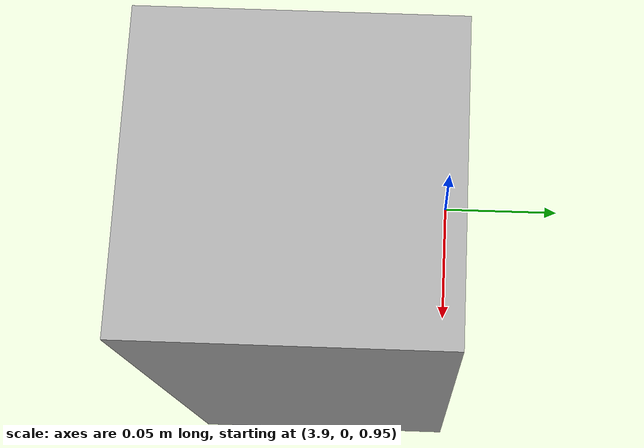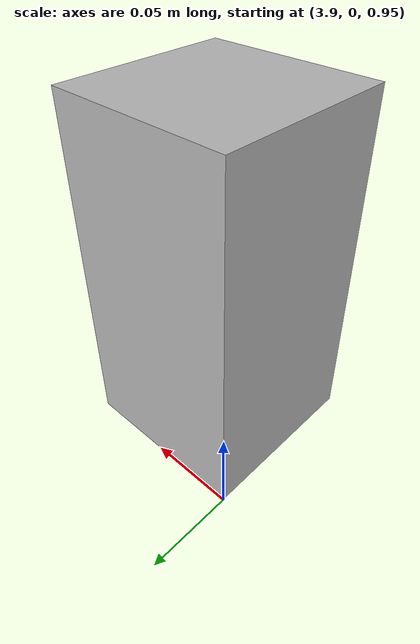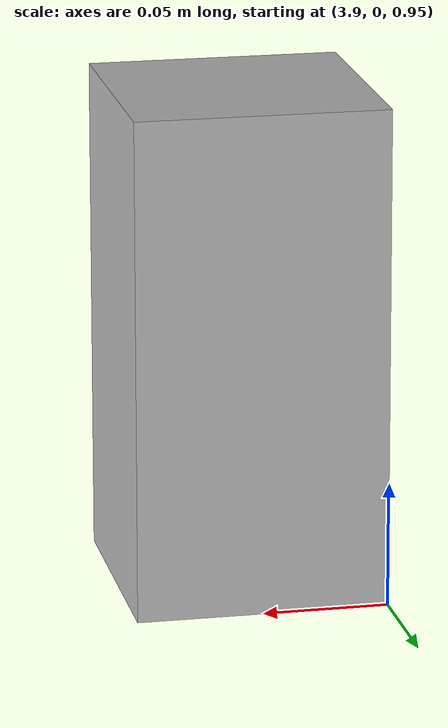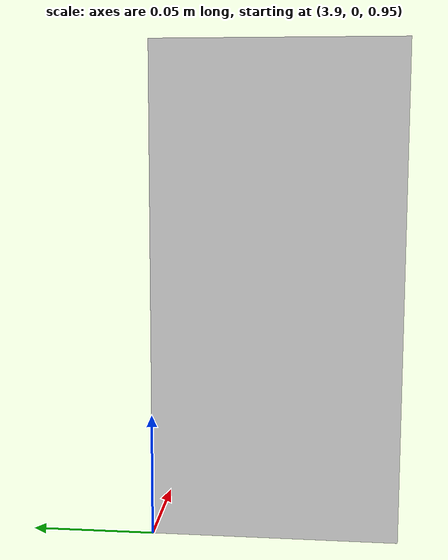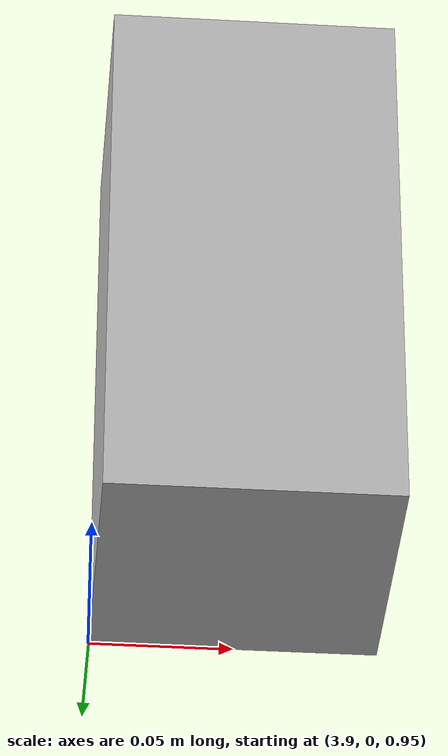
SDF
<?xml version="1.0" ?>
    <sdf version="1.5">
        <model name="camera">
            <pose>4 0 1.0 0 0.0 3.14</pose>
            <link name="link">
                <pose>0.05 0.05 0.05 0 0 0</pose>
                <inertial>
                <mass>1</mass>
                <inertia>
                    <ixx>1</ixx>
                    <iyy>1</iyy>
                    <izz>1</izz>
                </inertia>
                </inertial>
                <collision name="collision">
                <geometry>
                    <box>
                    <size>0.1 0.1 0.2</size>
                    </box>
                </geometry>
                </collision>
                <visual name="visual">
                <geometry>
                    <box>
                    <size>0.1 0.1 0.2</size>
                    </box>
                </geometry>
                </visual>

                <sensor name="camera1" type="camera">
                <topic>boxes_full_2d</topic>
                <camera>
                    <box_type>full_2d</box_type>
                    <horizontal_fov>1.047</horizontal_fov>
                    <image>
                    <width>800</width>
                    <height>600</height>
                    </image>
                    <clip>
                    <near>0.1</near>
                    <far>10</far>
                    </clip>
                    <save enabled="true">
                    <path>bounding_box_full_2d_data</path>
                    </save>
                    <noise>
                    <type>gaussian</type>
                    <mean>0.00</mean>
                    <stddev>0.0</stddev>
                    </noise>
                    <distortion>
                    <k1>1</k1>
                    <k2>10</k2>
                    <k3>5</k3>
                    <p1>10</p1>
                    <p2>10</p2>
                    <center>0.5 0.5</center>
                    </distortion>
                    <lens>
                    <type>stereographic</type>
                    <scale_to_hfov>true</scale_to_hfov>
                    <cutoff_angle>1.5707963267948966</cutoff_angle>
                    <env_texture_size>256</env_texture_size>
                    </lens>
                </camera>
                <always_on>1</always_on>
                <update_rate>30</update_rate>
                <visualize>true</visualize>

                <plugin
                    filename="gz-sim-camera-video-recorder-system"
                    name="gz::sim::systems::CameraVideoRecorder">
                    <service>boxes_full_2d</service>
                    <use_sim_time>true</use_sim_time>
                    <fps>24</fps>
                </plugin>

                </sensor>

            </link>

            <plugin
                filename="Position_Control"
                name="gz::sim::v7::systems::PositionController">
                <timestep_precision>10</timestep_precision>
                <pose_topic>box</pose_topic>
                <file_topic>file</file_topic>
                <xyz_offset> 0 0 0</xyz_offset>
                <rpy_offset> 0 0 0</rpy_offset>
            </plugin>

            <plugin
                filename="Pose_To_File"
                name="gz::sim::v7::systems::PoseToFile">
                <service>pose_to_file</service>
            </plugin>
        </model>
    </sdf>
